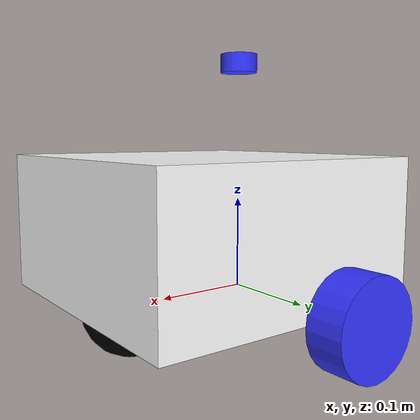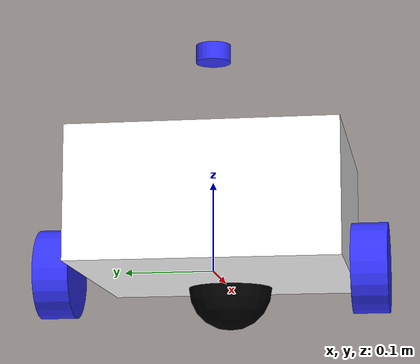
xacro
<?xml version="1.0"?>
<robot xmlns:xacro="http://www.ros.org/wiki/xacro"  name="my_robot">
    <xacro:arg name="prefix" default="" />

    <xacro:include filename="single_robot.xacro"/>
    <xacro:include filename="gazebo_control_corr.xacro"/>
    <!--xacro:include filename="ros2_control_arm.xacro"/-->
    <!--xacro:include filename="lidar_corr.xacro"/-->
    <!--xacro:include filename="camera_corr.xacro"/-->
    <xacro:include filename="imu_corr.xacro"/>

    <xacro:diffbot prefix="$(arg prefix)"/>
    <xacro:diffbot_gazebo_controller prefix="$(arg prefix)"/>
    <!--xacro:arm_controller prefix="$(arg prefix)"/-->
    <!--xacro:lidar_module prefix="$(arg prefix)"/-->
    <!--xacro:camera_module prefix="$(arg prefix)"/-->
    <xacro:imu_module prefix="$(arg prefix)"/>

</robot>

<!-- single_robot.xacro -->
<robot xmlns:xacro="http://www.ros.org/wiki/xacro"  >

    <xacro:macro name="diffbot" params="prefix">

    <xacro:include filename="inertial_macros.xacro"/>

    <material name="white">
        <color rgba="1 1 1 1" />
    </material>

    <material name="orange">
        <color rgba="1 0.3 0.1 1" />
    </material>

    <material name="blue">
        <color rgba="0.2 0.2 1 1" />
    </material>

    <material name="red">
        <color rgba="1 0 0 1" />
    </material>

    <material name="black">
        <color rgba="0 0 0 1" />
    </material>

    <!-- Base link-->
    <link name="${prefix}base_link">

    </link>

    <!-- Base_Footprint Link-->

    <joint name="${prefix}base_footprint_joint" type="fixed">
        <parent link="${prefix}base_link" />
        <child link="${prefix}base_footprint" />
        <origin xyz= '0 0 0' rpy="0 0 0"/>
    </joint>

    <link name="${prefix}base_footprint">

    </link>

    <!-- chassi link-->
    <joint name="${prefix}chassis_joint" type="fixed">
        <parent link="${prefix}base_link" />
        <child link="${prefix}chassis" />
        <origin xyz= '-0.1 0 0'/>
    </joint>

    <link name="${prefix}chassis">
        <visual>
            <origin xyz="0.15 0 0.075" />
            <geometry>
                <box size="0.3 0.3 0.15"/>
            </geometry>
            <material name="white" />
        </visual>
        <collision>
            <origin xyz="0.15 0 0.075" />
            <geometry>
                <box size="0.3 0.3 0.15"/>
            </geometry>
        </collision>
        <xacro:inertial_box mass="3.0" x="0.3" y="0.3" z="0.15">
            <origin xyz="0.15 0 0.075" rpy="0 0 0"/>
        </xacro:inertial_box>
    </link>

    <gazebo reference="${prefix}chassis">
        <material>Gazebo/White</material>
    </gazebo>

    <!-- left wheel link-->

    <joint name="${prefix}left_wheel_joint" type="continuous">
        <parent link="${prefix}base_link"/>
        <child link="${prefix}left_wheel"/>
        <origin xyz="0 0.175 0" rpy="-${pi/2} 0 0"/>
        <axis xyz="0 0 1"/>
    </joint>

    <link name="${prefix}left_wheel">
        <visual>
            <geometry>
                <cylinder radius="0.05" length='0.04'/>
            </geometry>
            <material name="blue"/>
        </visual>
        <collision>
            <geometry>
                <cylinder radius="0.05" length='0.04'/>
            </geometry>
        </collision>
        <xacro:inertial_cylinder mass="0.1" length="0.04" radius="0.05">
            <origin xyz="0 0 0" rpy="0 0 0"/>
        </xacro:inertial_cylinder>
    </link>

    <gazebo reference="${prefix}left_wheel">
        <material>Gazebo/Blue</material>
    </gazebo>

    <!-- right wheel link-->

    <joint name="${prefix}right_wheel_joint" type="continuous">
        <parent link="${prefix}base_link"/>
        <child link="${prefix}right_wheel"/>
        <origin xyz="0 -0.175 0" rpy="${pi/2} 0 0"/>
        <axis xyz="0 0 -1"/>
    </joint>

    <link name="${prefix}right_wheel">
        <visual>
            <geometry>
                <cylinder radius="0.05" length='0.04'/>
            </geometry>
            <material name="blue"/>
        </visual>
        <collision>
            <geometry>
                <cylinder radius="0.05" length='0.04'/>
            </geometry>
        </collision>
        <xacro:inertial_cylinder mass="0.1" length="0.04" radius="0.05">
            <origin xyz="0 0 0" rpy="0 0 0"/>
        </xacro:inertial_cylinder>
    </link>

    <gazebo reference="${prefix}right_wheel">
        <material>Gazebo/Blue</material>
    </gazebo>

    <!-- caster wheel link-->

    <joint name="${prefix}caster_wheel_joint" type="fixed">
        <parent link="${prefix}chassis"/>
        <child link="${prefix}caster_wheel"/>
        <origin xyz="0.24 0 0"/>
    </joint>

    <link name="${prefix}caster_wheel">
        <visual>
            <geometry>
                <sphere radius="0.05"/>
            </geometry>
            <material name="black"/>
        </visual>
        <collision>
            <geometry>
                <sphere radius="0.05"/>
            </geometry>
        </collision>
        <xacro:inertial_sphere mass="0.1" radius="0.05">
            <origin xyz="0 0 0" rpy="0 0 0"/>
        </xacro:inertial_sphere>
    </link>

    <gazebo reference="${prefix}caster_wheel">
        <material>Gazebo/Black</material>
        <mu1 value="0.001"/>
        <mu2 value="0.001"/>

    </gazebo>

    </xacro:macro>
</robot>

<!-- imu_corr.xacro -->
<robot xmlns:xacro="http://www.ros.org/wiki/xacro" >

    <xacro:macro name="imu_module" params="prefix">

      <xacro:include filename="inertial_macros.xacro"/>

      <joint name="${prefix}imu_joint" type="fixed">
          <parent link="${prefix}base_link"/>
          <child link="${prefix}imu_link"/>
          <origin xyz="0 0 0.25" rpy="0 0 0"/>
      </joint>

      <link name="${prefix}imu_link">
        <visual>
          <geometry>
            <cylinder radius='0.02' length='0.02'/>
            </geometry>
            <material name='blue'/>
        </visual>
        <collision>
          <geometry>
            <cylinder radius='0.02' length='0.02'/>
          </geometry>
        </collision>
        <xacro:inertial_cylinder mass="0.01" length="0.02" radius="0.02">
          <origin xyz="0 0 0" rpy="0 0 0"/>
        </xacro:inertial_cylinder>
      </link>

      <gazebo reference="${prefix}imu_link">
        <material>Gazebo/Blue</material>
        <gravity>true</gravity>
        <sensor name="${prefix}imu" type="imu">
          <always_on>true</always_on>
          <update_rate>200</update_rate>
          <visualize>true</visualize>
          <imu>
            <angular_velocity>
              <x>
                <noise type="gaussian">
                  <mean>0.0</mean>
                  <stddev>2e-4</stddev>
                </noise>
              </x>
              <y>
                <noise type="gaussian">
                  <mean>0.0</mean>
                  <stddev>2e-4</stddev>
                </noise>
              </y>
              <z>
                <noise type="gaussian">
                  <mean>0.0</mean>
                  <stddev>2e-4</stddev>
                </noise>
              </z>
            </angular_velocity>
            <linear_acceleration>
              <x>
                <noise type="gaussian">
                  <mean>0.0</mean>
                  <stddev>1.7e-4</stddev>
                </noise>
              </x>
              <y>
                <noise type="gaussian">
                  <mean>0.0</mean>
                  <stddev>1.7e-4</stddev>
                </noise>
              </y>
              <z>
                <noise type="gaussian">
                  <mean>0.0</mean>
                  <stddev>1.7e-4</stddev>
                </noise>
              </z>
            </linear_acceleration>
          </imu>
          <plugin name="robot_imu" filename="libgazebo_ros_imu_sensor.so">
            <ros>
              <remapping>~/out:=imu</remapping>
            </ros>
          </plugin>
        </sensor>
      </gazebo>

    </xacro:macro>

</robot>
